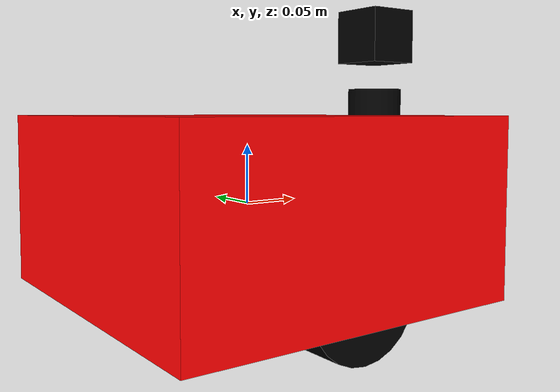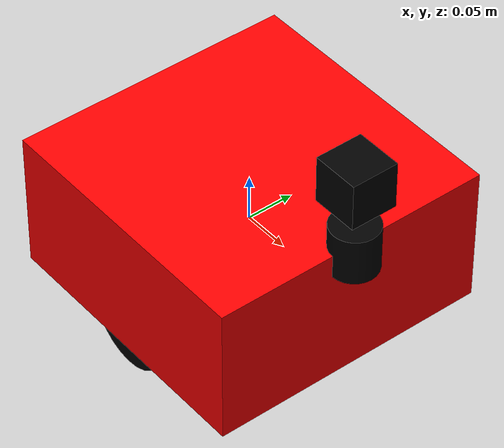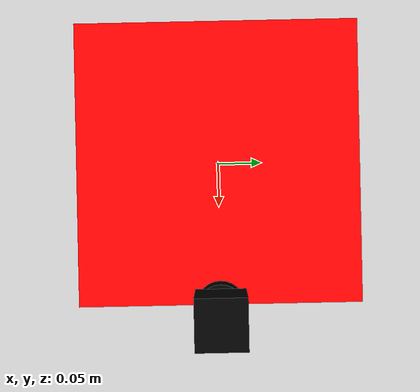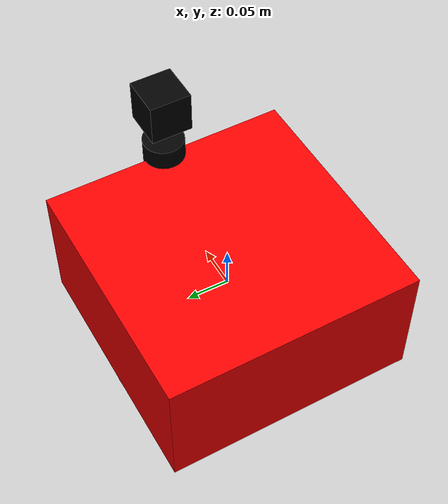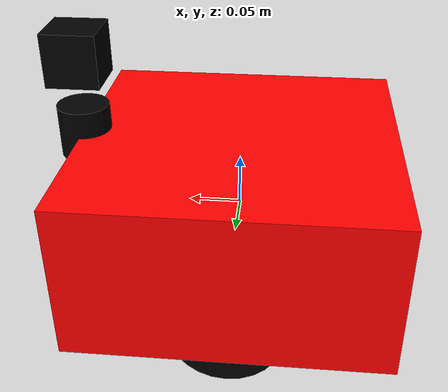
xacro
<?xml version="1.0"?>
<robot xmlns:xacro="http://www.ros.org/wiki/xacro" name="mars_robot">

  <!-- Include Gazebo configurations -->
  <xacro:include filename="$(find mars_robots)/urdf/mars_robot.gazebo.xacro"/>

  <!-- Robot Properties -->
  <xacro:property name="base_width" value="0.3"/>
  <xacro:property name="base_length" value="0.3"/>
  <xacro:property name="base_height" value="0.15"/>
  <xacro:property name="wheel_radius" value="0.05"/>
  <xacro:property name="wheel_width" value="0.04"/>
  <xacro:property name="wheel_separation" value="0.25"/>
  <xacro:property name="wheel_offset_z" value="-0.05"/>
  <xacro:property name="caster_radius" value="0.025"/>

  <!-- Base Link -->
  <link name="base_link">
    <visual>
      <geometry>
        <box size="${base_length} ${base_width} ${base_height}"/>
      </geometry>
      <material name="red">
        <color rgba="1 0 0 1"/>
      </material>
    </visual>
    <collision>
      <geometry>
        <box size="${base_length} ${base_width} ${base_height}"/>
      </geometry>
    </collision>
    <inertial>
      <mass value="5.0"/>
      <inertia ixx="0.1" ixy="0" ixz="0" iyy="0.1" iyz="0" izz="0.1"/>
    </inertial>
  </link>

  <!-- Left Wheel -->
  <link name="left_wheel">
    <visual>
      <geometry>
        <cylinder radius="${wheel_radius}" length="${wheel_width}"/>
      </geometry>
      <material name="black">
        <color rgba="0 0 0 1"/>
      </material>
    </visual>
    <collision>
      <geometry>
        <cylinder radius="${wheel_radius}" length="${wheel_width}"/>
      </geometry>
    </collision>
    <inertial>
      <mass value="0.5"/>
      <inertia ixx="0.01" ixy="0" ixz="0" iyy="0.01" iyz="0" izz="0.01"/>
    </inertial>
  </link>

  <!-- Right Wheel -->
  <link name="right_wheel">
    <visual>
      <geometry>
        <cylinder radius="${wheel_radius}" length="${wheel_width}"/>
      </geometry>
      <material name="black">
        <color rgba="0 0 0 1"/>
      </material>
    </visual>
    <collision>
      <geometry>
        <cylinder radius="${wheel_radius}" length="${wheel_width}"/>
      </geometry>
    </collision>
    <inertial>
      <mass value="0.5"/>
      <inertia ixx="0.01" ixy="0" ixz="0" iyy="0.01" iyz="0" izz="0.01"/>
    </inertial>
  </link>

  <!-- Front Caster -->
  <link name="front_caster">
    <visual>
      <geometry>
        <sphere radius="${caster_radius}"/>
      </geometry>
      <material name="black">
        <color rgba="0 0 0 1"/>
      </material>
    </visual>
    <collision>
      <geometry>
        <sphere radius="${caster_radius}"/>
      </geometry>
    </collision>
    <inertial>
      <mass value="0.1"/>
      <inertia ixx="0.001" ixy="0" ixz="0" iyy="0.001" iyz="0" izz="0.001"/>
    </inertial>
  </link>

  <!-- Joints -->
  <joint name="left_wheel_joint" type="continuous">
    <parent link="base_link"/>
    <child link="left_wheel"/>
    <origin xyz="0 ${wheel_separation/2} ${wheel_offset_z}" rpy="-1.5708 0 0"/>
    <axis xyz="0 0 1"/>
  </joint>

  <joint name="right_wheel_joint" type="continuous">
    <parent link="base_link"/>
    <child link="right_wheel"/>
    <origin xyz="0 ${-wheel_separation/2} ${wheel_offset_z}" rpy="-1.5708 0 0"/>
    <axis xyz="0 0 1"/>
  </joint>

  <joint name="front_caster_joint" type="fixed">
    <parent link="base_link"/>
    <child link="front_caster"/>
    <origin xyz="${base_length/3} 0 ${-base_height/2}" rpy="0 0 0"/>
  </joint>

  <!-- Sensors -->
  <link name="laser_link">
    <visual>
      <geometry>
        <cylinder radius="0.025" length="0.05"/>
      </geometry>
      <material name="black">
        <color rgba="0 0 0 1"/>
      </material>
    </visual>
    <collision>
      <geometry>
        <cylinder radius="0.025" length="0.05"/>
      </geometry>
    </collision>
    <inertial>
      <mass value="0.1"/>
      <inertia ixx="0.001" ixy="0" ixz="0" iyy="0.001" iyz="0" izz="0.001"/>
    </inertial>
  </link>

  <joint name="laser_joint" type="fixed">
    <parent link="base_link"/>
    <child link="laser_link"/>
    <origin xyz="${base_length/2} 0 ${base_height/2}" rpy="0 0 0"/>
  </joint>

  <!-- Camera -->
  <link name="camera_link">
    <visual>
      <geometry>
        <box size="0.05 0.05 0.05"/>
      </geometry>
      <material name="black">
        <color rgba="0 0 0 1"/>
      </material>
    </visual>
    <collision>
      <geometry>
        <box size="0.05 0.05 0.05"/>
      </geometry>
    </collision>
    <inertial>
      <mass value="0.1"/>
      <inertia ixx="0.001" ixy="0" ixz="0" iyy="0.001" iyz="0" izz="0.001"/>
    </inertial>
  </link>

  <joint name="camera_joint" type="fixed">
    <parent link="base_link"/>
    <child link="camera_link"/>
    <origin xyz="${base_length/2} 0 ${base_height}" rpy="0 0 0"/>
  </joint>

</robot>
